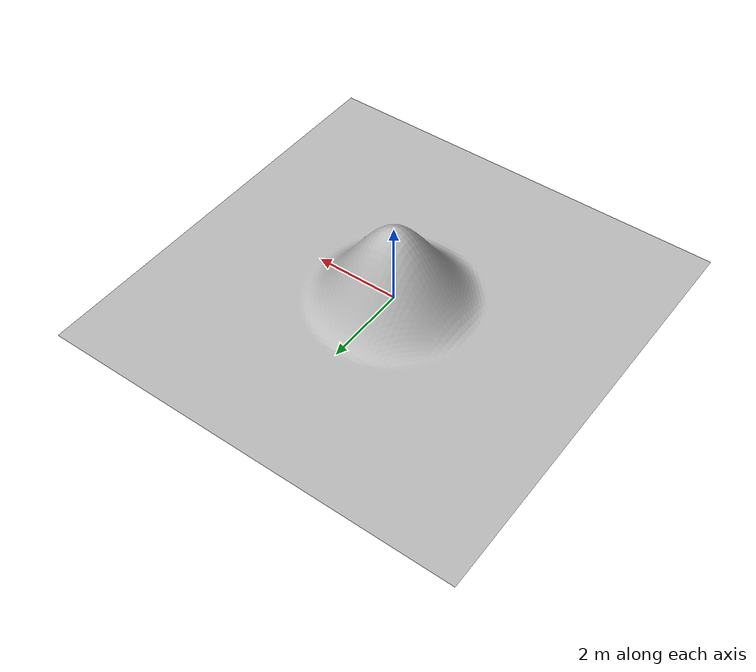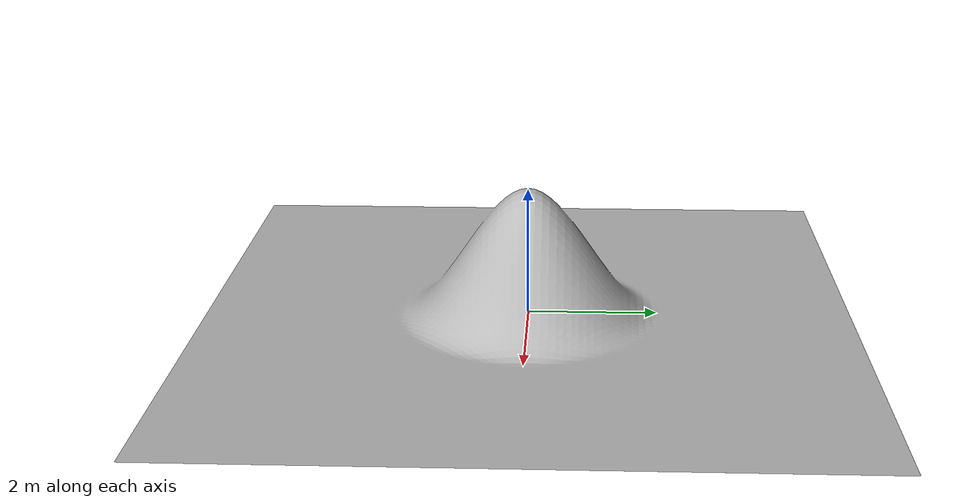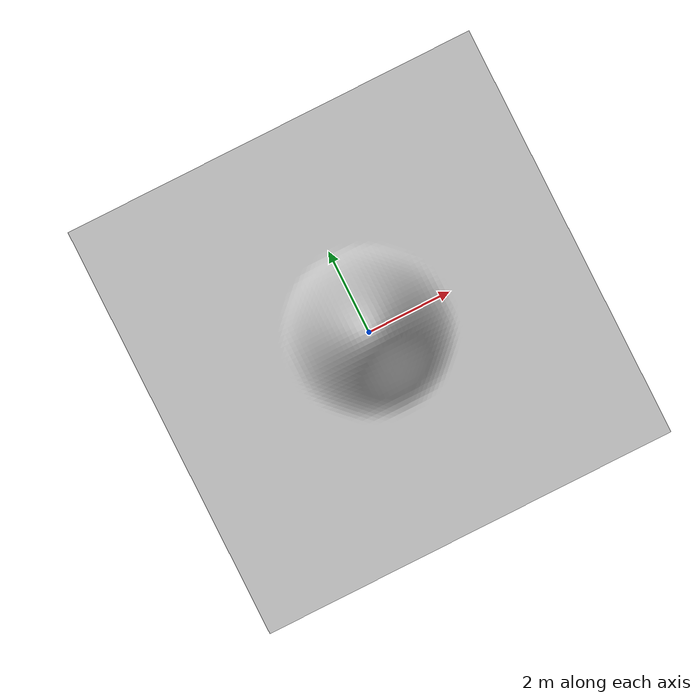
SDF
<?xml version="1.0"?>
<sdf version="1.4">
  <world name="default">
    <include>
      <uri>model://sun</uri>
    </include>
    <include>
      <uri>model://map_singlepeak</uri>
    </include>
  </world>
</sdf>

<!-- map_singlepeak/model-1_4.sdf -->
<sdf version="1.4">
  <model name="map_singlepeak">
    <static>true</static>
    <link name="map_link">
      <pose>0 0 0 0 0 0</pose>
      <collision name="collision">
        <geometry>
          <mesh>
            <uri>model://map_singlepeak/meshes/singlepeak.dae</uri>
          </mesh>
        </geometry>
      </collision>
      <visual name="visual">
        <geometry>
          <mesh>
            <uri>model://map_singlepeak/meshes/singlepeak.dae</uri>
          </mesh>
        </geometry>
        <material>
          <script>
            <uri>model://map_singlepeak/materials/scripts/singlepeak.material</uri>
            <uri>model://map_singlepeak/materials/textures/texture.jpg</uri>
            <name>map_singlepeak/Image</name>
          </script>
        </material>
      </visual>
      <surface>
        <friction>
          <ode>
              <mu>99999999.0</mu>
              <mu2>99999999.0</mu2>
              <fdir1>0 0 0</fdir1>
              <slip1>0</slip1>
              <slip2>0</slip2>
          </ode>
        </friction>
      </surface>
    </link>
  </model>
</sdf>
